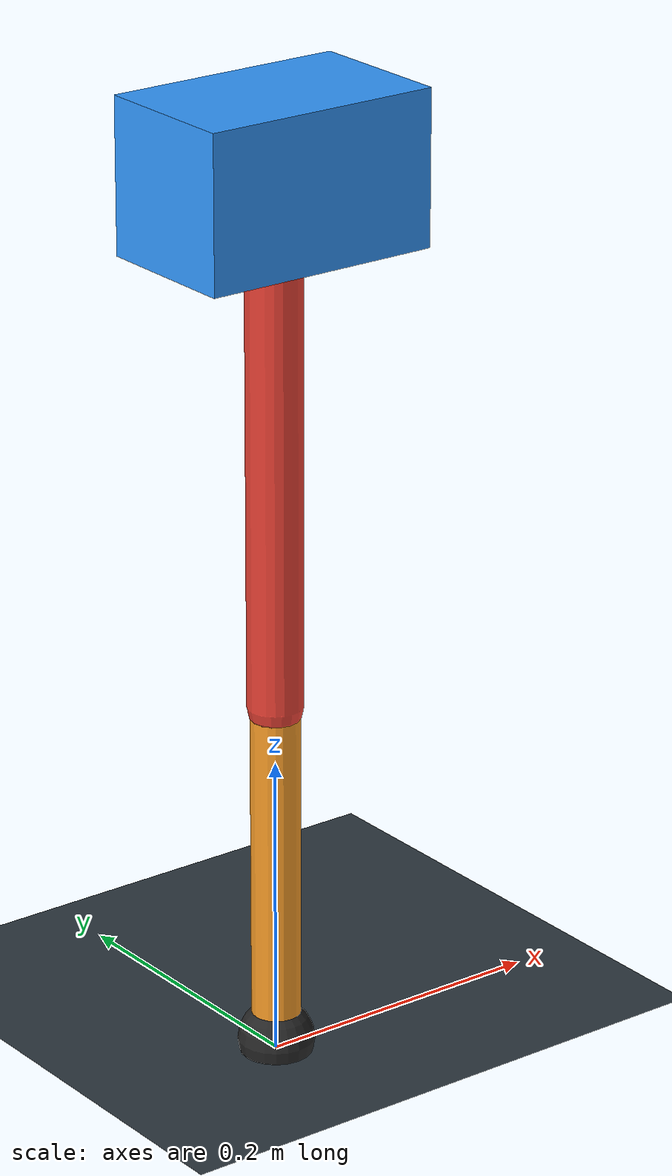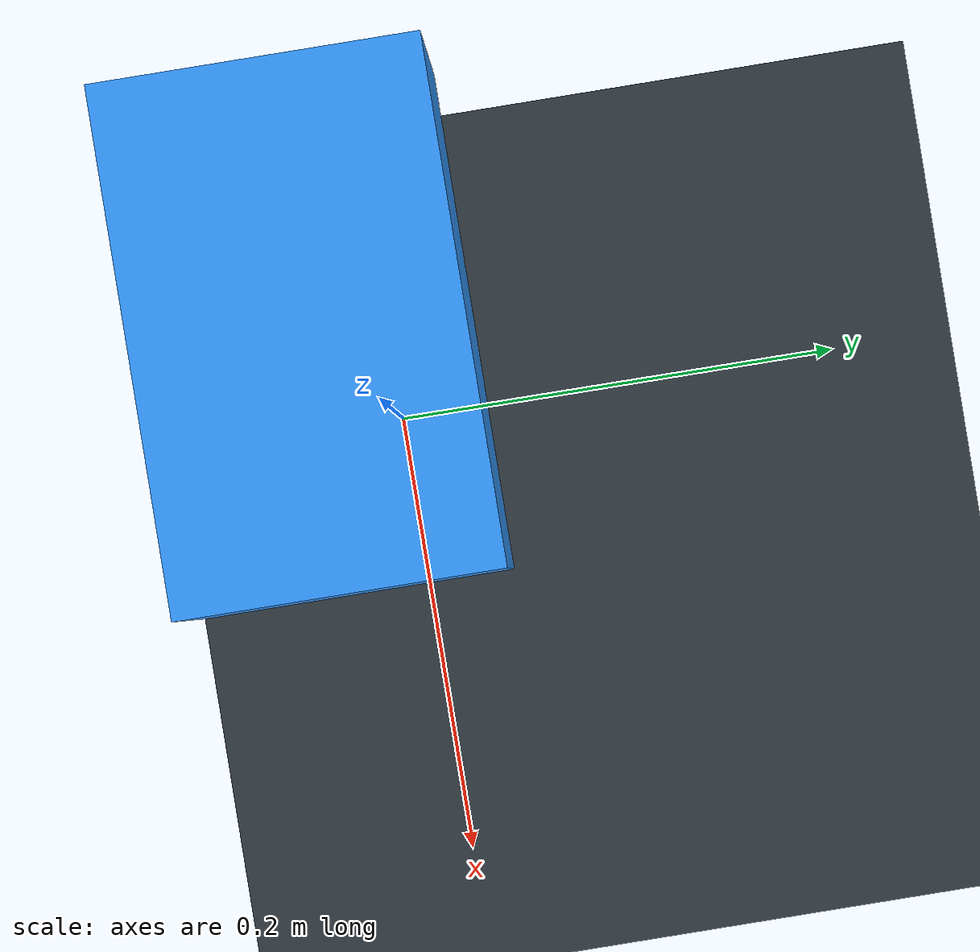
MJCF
<mujoco model="single_axis_two_bar">
  <compiler angle="radian" inertiafromgeom="true"/>
  <option timestep="0.001" integrator="implicitfast" gravity="0 0 -9.81"/>
  <default>
    <joint damping="0.08"/>
    <geom friction="1.2 0.01 0.0001" condim="3"/>
  </default>
  <worldbody>
    <geom name="floor" type="plane" size="5 5 0.1" rgba="0.18 0.22 0.25 1"/>
    <body name="carriage" pos="0 0 0.5871052105941565">
      <joint name="pole_slide" type="slide" axis="0 0 1"/>
      <geom name="payload" type="box" size="0.08 0.05 0.05" mass="3.411122449406661" rgba="0.2 0.6 1 1"/>
      <body name="thigh" pos="0 0 0">
        <joint name="hip" type="hinge" axis="0 1 0"/>
        <geom name="thigh_link" type="capsule" fromto="0 0 0 0 0 -0.3476970815482978" size="0.018" mass="0.24773876501473743" rgba="0.9 0.25 0.2 1"/>
        <body name="shank" pos="0 0 -0.3476970815482978">
          <joint name="knee" type="hinge" axis="0 1 0"/>
          <geom name="shank_link" type="capsule" fromto="0 0 0 0 0 -0.23179282628072953" size="0.016" mass="0.1651554515969869" rgba="0.95 0.6 0.15 1"/>
          <geom name="foot" type="sphere" pos="0 0 -0.23179282628072953" size="0.025" mass="0.03" rgba="0.15 0.15 0.15 1"/>
          <site name="toe" pos="0 0 -0.23179282628072953" size="0.008"/>
        </body>
      </body>
    </body>
  </worldbody>
  <actuator>
    <motor name="hip_motor" joint="hip" ctrlrange="-13.286429902188607 13.286429902188607"/>
    <motor name="knee_motor" joint="knee" ctrlrange="-42.84740416734124 42.84740416734124"/>
  </actuator>
</mujoco>
